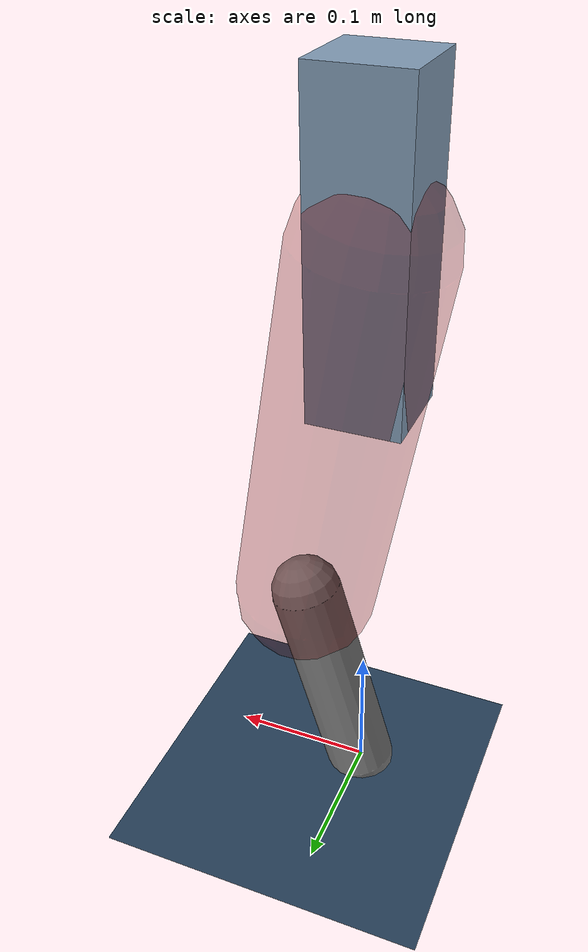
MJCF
<mujoco model="Hopper2D">
	<compiler inertiafromgeom="true" angle="radian" />
	<option timestep="0.001" integrator="implicit" cone="elliptic" solver="Newton" tolerance="1e-10" />

	<default>
		<geom contype="1" conaffinity="1" condim="3" friction="2 0.005 0.0001" solref="0.005 1" />
		<joint limited="true" damping="0.1" />
	</default>

	<asset>
		<texture name="skybox" type="skybox" builtin="gradient" rgb1=".4 .6 .8" rgb2="0 0 0" width="800" height="800" />
		<texture name="grid" type="2d" builtin="checker" rgb1=".1 .2 .3" rgb2=".2 .3 .4" width="300" height="300" mark="edge" markrgb=".2 .3 .4" />
		<material name="ground" texture="grid" texrepeat="1 1" texuniform="true" reflectance="0.1" />
		<material name="leg" rgba="0.5 0.6 0.7 1" />
	</asset>

	<worldbody>

		<geom name="floor" type="plane" size="5 5 0.25" material="ground" />

		<light directional="false" diffuse="0.8 0.8 0.8" specular="0.3 0.3 0.3" pos="0 0 2" dir="0 0 -1" />
		<light mode="targetbodycom" target="base" directional="false" diffuse="0.8 0.8 0.8" specular="0.3 0.3 0.3" pos="0 0 2" dir="0 0 -1" />

		<camera name="fixed" pos="0 -2 1" xyaxes="1 0 0 0 0 1" />
		<camera name="tracking" mode="trackcom" pos="0 -3 1" />

		<body name="root" pos="0 0 0.4101914330178327">
			<joint name="slide_x" type="slide" axis="1 0 0" range="-100 100" />
			<joint name="slide_z" type="slide" axis="0 0 1" range="0 10" />

			<body name="base" pos="0 0 0">
				<geom name="torso" type="box" size="0.03 0.03 0.1" mass="2.2969999999999997" material="leg" />

				<body name="link1" pos="0 0 0" euler="0 1.3998871472610874 0">
					<joint type="hinge" axis="0 -1 0" pos="0 0 0" name="hinge1" limited="true" range="-3.14 3.14" stiffness="0" damping="0.1" />
					<geom name="thigh" type="capsule" fromto="0 0 0 0.2598801344741982 0 0" size="0.05" rgba="0.5 0 0 0.3" mass="0.8820883496329153" />

					<body name="link2" pos="0.2598801344741982 0 0" euler="0 0.45024104697925027 0">
						<joint type="hinge" axis="0 -1 0" pos="0 0 0" name="hinge2" limited="true" range="-3.14 3.14" stiffness="0" damping="0.1" />
						<geom name="shank" type="capsule" fromto="0 0 0 0.16031129854363446 0 0" size="0.025" mass="0.36684903883490755" />

					</body>
				</body>
			</body>
		</body>
	</worldbody>

	<actuator>
		<motor name="torque1" joint="hinge1" ctrlrange="-51.99482115113848 51.99482115113848" ctrllimited="true" gear="1" />
		<motor name="torque2" joint="hinge2" ctrlrange="-27.03990613653518 27.03990613653518" ctrllimited="true" gear="1" />
	</actuator>
</mujoco>
